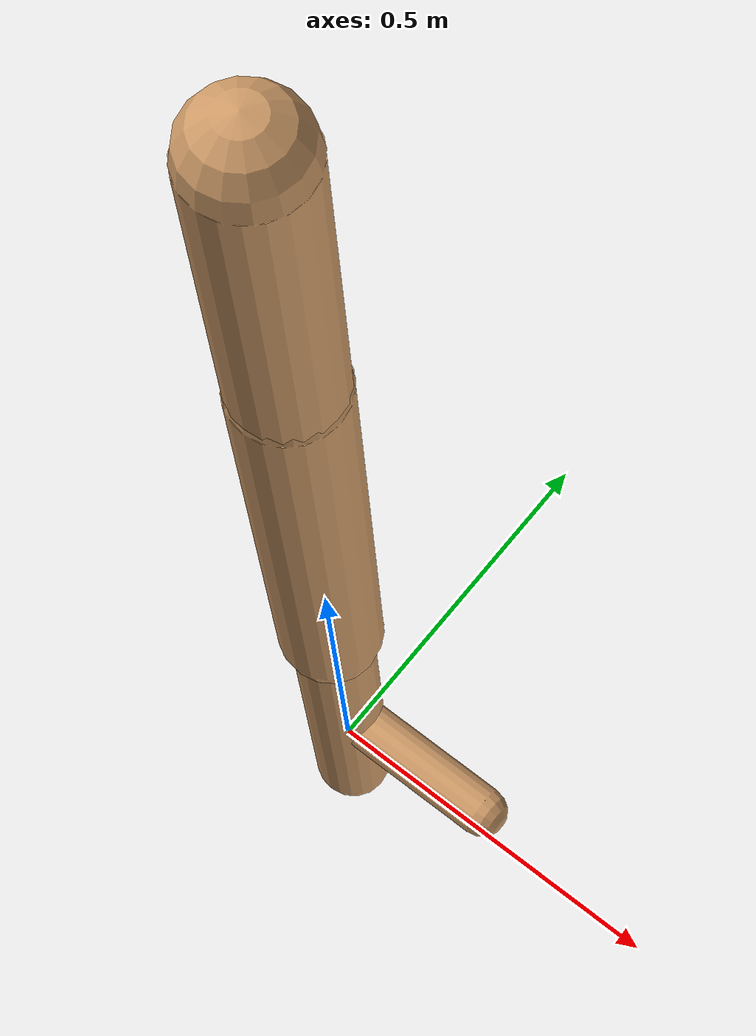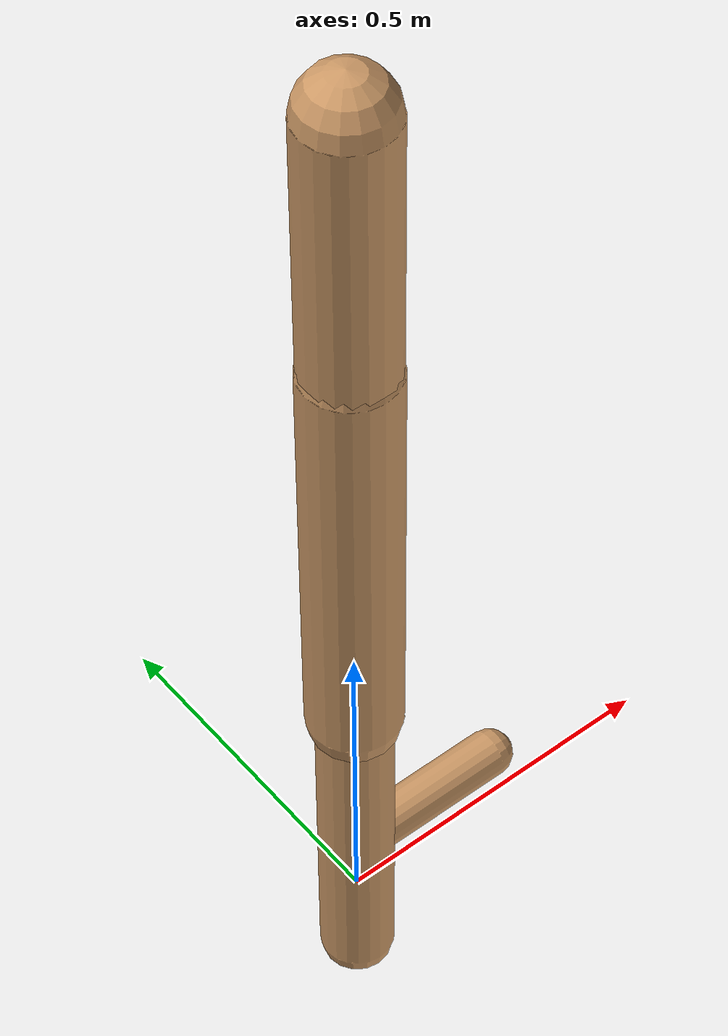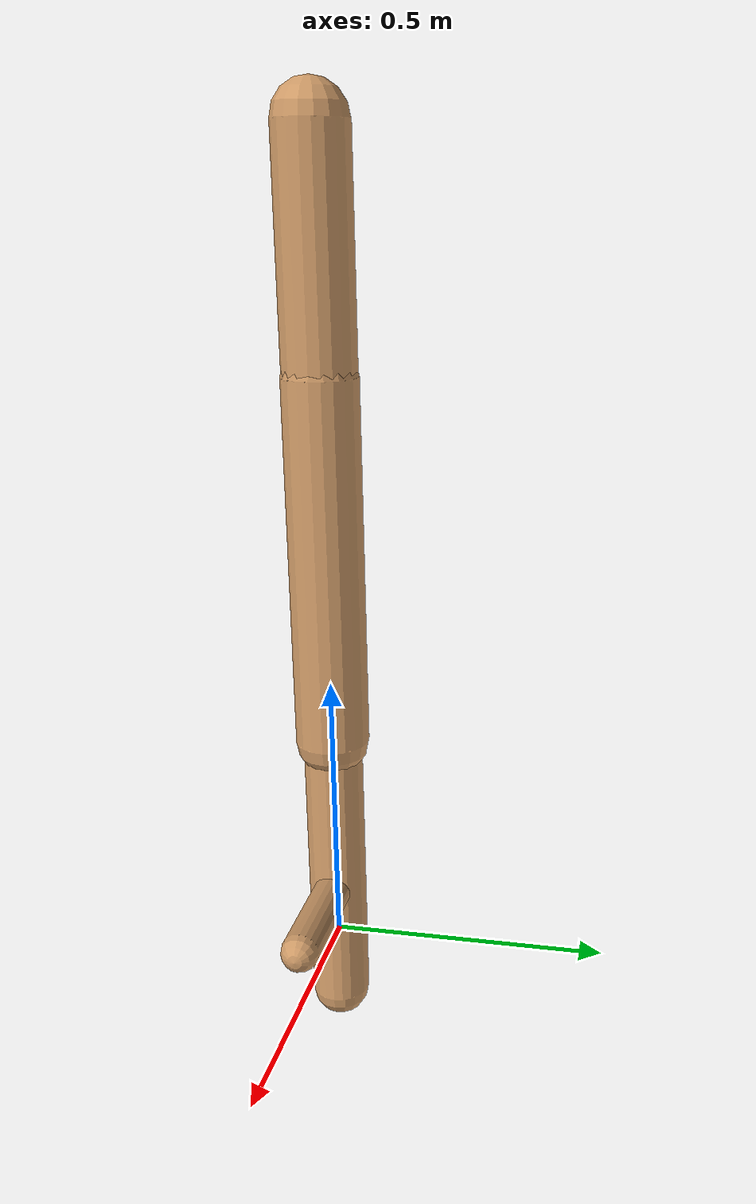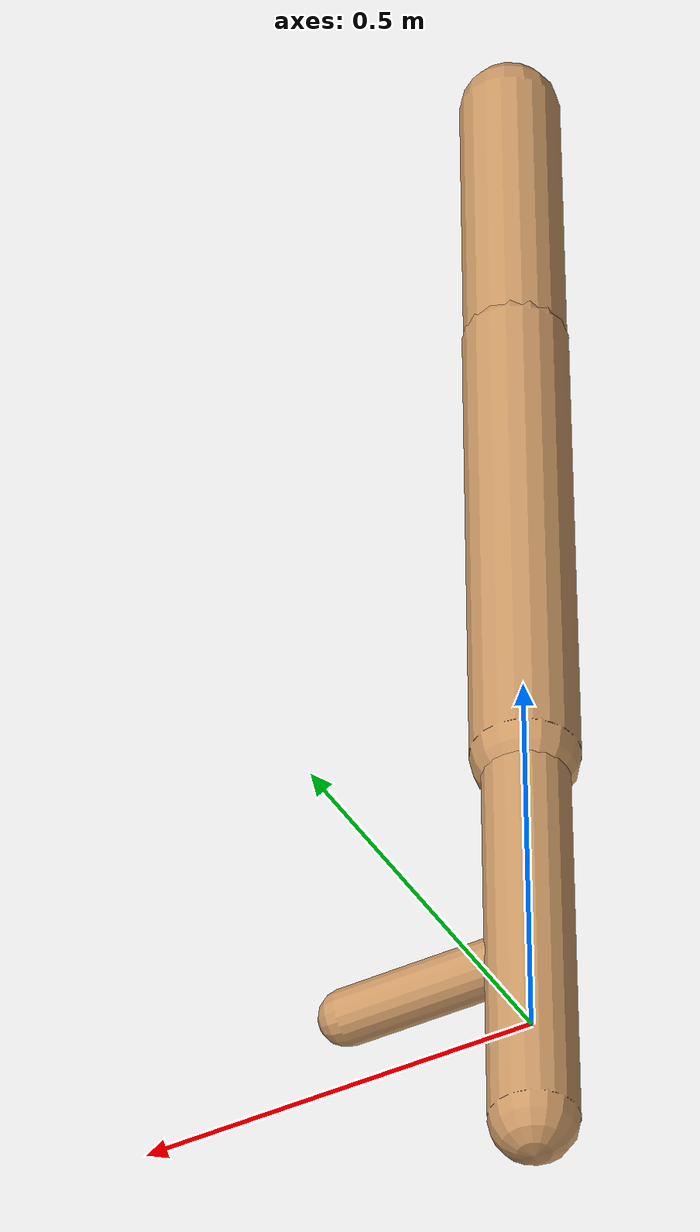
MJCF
<mujoco model="walker2d">
  <compiler angle="degree" coordinate="global" inertiafromgeom="true" />
  <default>
    <joint armature="0.01" damping=".1" limited="true" />
    <geom conaffinity="0" condim="3" contype="1" density="1000" friction="0.8 .1 .1" rgba="0.8 0.6 .4 1" />
  </default>
  <option integrator="RK4" timestep="0.002" />
  <worldbody>

    <body name="torso" pos="0 0 0.4377059631750576">
      <joint armature="0" axis="1 0 0" damping="0" limited="false" name="ignorex" pos="0 0 0" stiffness="0" type="slide" />
      <joint armature="0" axis="0 0 1" damping="0" limited="false" name="ignorez" pos="0 0 0" ref="1.25" stiffness="0" type="slide" />
      <joint armature="0" axis="0 1 0" damping="0" limited="false" name="ignorey" pos="0 0 0" stiffness="0" type="hinge" />
      <geom fromto="0 0 1.45 0 0 1.05" name="torso_geom" size="0.06408515463152246" type="capsule" />
      <body name="thigh">
        <joint axis="0 -1 0" name="thigh_joint" pos="0 0 1.05" range="-150 0" type="hinge" />
        <geom fromto="0.0 0.0 1.05 0.0 0.0 0.39266559639076215" name="thigh_geom" size="0.06591555855634042" type="capsule" />
        <body name="leg" pos="0.0 0.0 -0.20733440360923783">
          <joint axis="0 -1 0" name="leg_joint" pos="0 0 0.6" range="-150 0" type="hinge" />
          <geom fromto="0.0 0.0 0.6 0.0 0.0 -0.13037155956581978" name="leg_geom" size="0.052732446845072334" type="capsule" />
          <body name="foot" pos="0.0 0.0 -0.23037155956581978">
            <joint axis="0 -1 0" name="foot_joint" pos="0 0 0.1" range="-45 45" type="hinge" />
            <geom fromto="-0.0 0.0 0.09999999999999999 0.23621591567928593 0.0 0.09999999999999999" name="foot_geom" size="0.034141380240582095" type="capsule" />
          </body>
        </body>
      </body>

      <body name="thigh_left">
        <joint axis="0 -1 0" name="thigh_left_joint" pos="0 0 1.05" range="-150 0" type="hinge" />
        <geom fromto="0.0 0.0 1.05 0.0 0.0 0.39266559639076215" name="thigh_left_geom" rgba=".7 .3 .6 1" size="0.06591555855634042" type="capsule" />
        <body name="leg_left" pos="0.0 0.0 -0.20733440360923783">
          <joint axis="0 -1 0" name="leg_left_joint" pos="0 0 0.6" range="-150 0" type="hinge" />
          <geom fromto="0.0 0.0 0.6 0.0 0.0 -0.13037155956581978" name="leg_left_geom" rgba=".7 .3 .6 1" size="0.052732446845072334" type="capsule" />
          <body name="foot_left" pos="0.0 0.0 -0.23037155956581978">
            <joint axis="0 -1 0" name="foot_left_joint" pos="0 0 0.1" range="-45 45" type="hinge" />
            <geom fromto="-0.0 0.0 0.09999999999999999 0.23621591567928593 0.0 0.09999999999999999" name="foot_left_geom" rgba=".7 .3 .6 1" size="0.034141380240582095" type="capsule" />
          </body>
        </body>
      </body>
    </body>
  </worldbody>
  <actuator>

    <motor ctrllimited="true" ctrlrange="-1.0 1.0" gear="100" joint="thigh_joint" />
    <motor ctrllimited="true" ctrlrange="-1.0 1.0" gear="100" joint="leg_joint" />
    <motor ctrllimited="true" ctrlrange="-1.0 1.0" gear="100" joint="foot_joint" />
    <motor ctrllimited="true" ctrlrange="-1.0 1.0" gear="100" joint="thigh_left_joint" />
    <motor ctrllimited="true" ctrlrange="-1.0 1.0" gear="100" joint="leg_left_joint" />
    <motor ctrllimited="true" ctrlrange="-1.0 1.0" gear="100" joint="foot_left_joint" />

  </actuator>
</mujoco>
